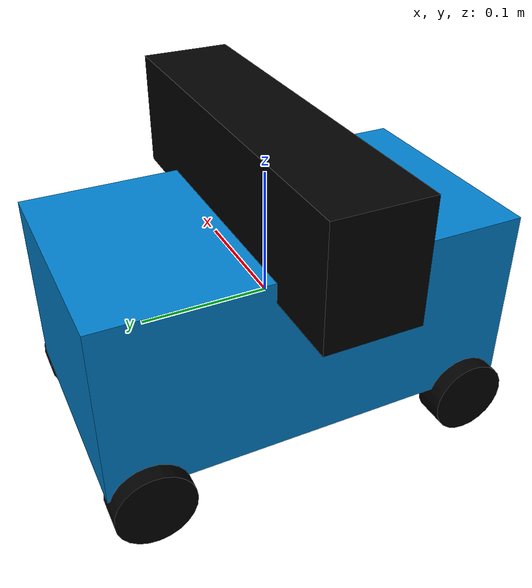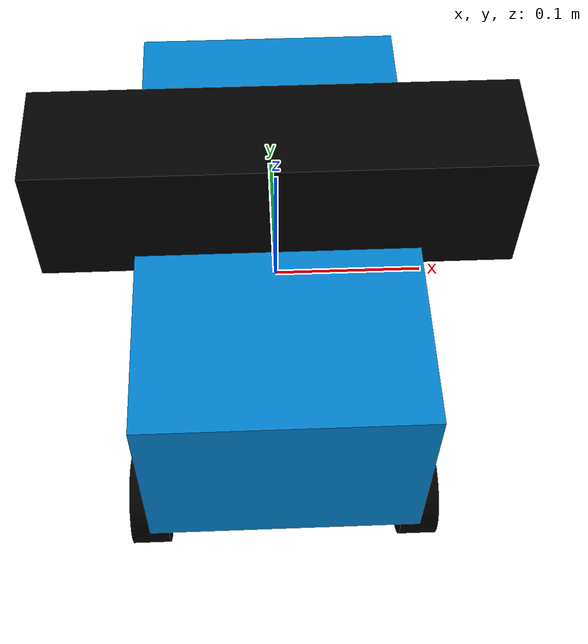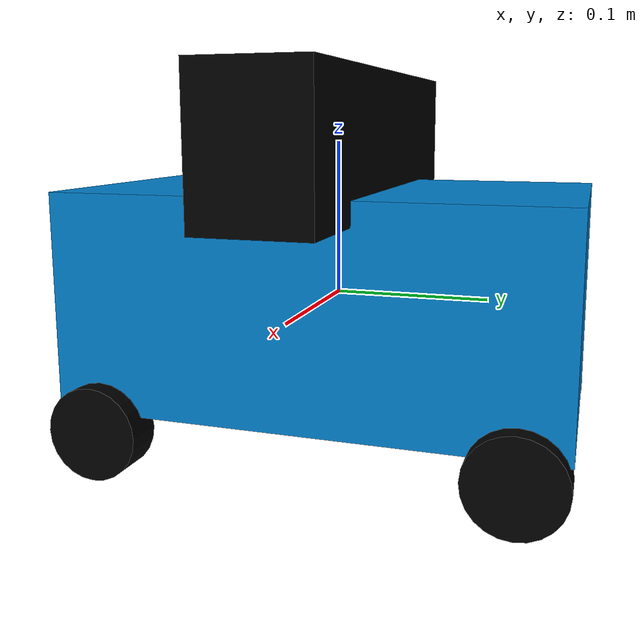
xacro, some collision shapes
<?xml version="1.0"?>
<robot name="racecar" xmlns:xacro="http://ros.org/wiki/xacro">
	<!-- constant definition -->
	<!-- wheel constants -->
	<property name="M_PI" value="3.1415926" />
	<property name="wheel_radius" value=".030" />
	<property name="wheel_length" value=".025" />
	<property name="wheel_mass" value=".020" />
	<property name="wheel_ixx" value=".000006" />
	<property name="wheel_ixy" value="0." />
	<property name="wheel_ixz" value="0." />
	<property name="wheel_iyy" value=".000006" />
	<property name="wheel_iyz" value="0." />
	<property name="wheel_izz" value=".000009" />
	<!-- body constants -->
	<property name="base_link_width" value=".32" />
	<property name="base_link_depth" value=".18" />
	<property name="base_link_height" value=".14" />
	<property name="base_link_mass" value="2.298" />
	<property name="base_link_ixx" value=".023363" />
	<property name="base_link_ixy" value="0." />
	<property name="base_link_ixz" value="0." />
	<property name="base_link_iyy" value=".009958" />
	<property name="base_link_iyz" value="0." />
	<property name="base_link_izz" value=".025814" />
	<!-- camera offsets -->
	<property name="camera_offset_x" value="0" />
	<property name="camera_offset_y" value="0" />
	<property name="camera_offset_z" value=".1" />
	<!-- macro definition -->
	<!-- wheel macro -->
	<macro name="wheel" params="prefix">
		<link name="${prefix}_wheel">
			<visual>
				<geometry>
					<cylinder length="${wheel_length}" radius="${wheel_radius}" />
				</geometry>
				<material name="black">
					<color rgba="0 0 0 1" />
				</material>
			</visual>
			<collision>
				<geometry>
					<cylinder length="${wheel_length}" radius="${wheel_radius}" />
				</geometry>
			</collision>
			<inertial>
				<mass value="${wheel_mass}" />
				<inertia ixx="${wheel_ixx}" ixy="${wheel_ixy}" ixz="${wheel_ixz}" iyy="${wheel_iyy}" iyz="${wheel_iyz}" izz="${wheel_izz}" />
			</inertial>
		</link>
	</macro>
	<!-- wheel joint macro -->
	<macro name="wheel_joint" params="prefix sign_x sign_y sign_z">
		<joint name="${prefix}_wheel_joint" type="continuous">
			<parent link="base_link" />
			<child link="${prefix}_wheel" />
			<origin rpy="0 ${M_PI/2} 0" xyz="${sign_x*0.09} ${sign_y*0.13} ${sign_z*0.08}" />
			<axis xyz="0 0 1" />
			<limit effort="10" velocity="1.0" />
			<joint_properties damping="0.0" friction="0.0" />
		</joint>
	</macro>
	<!-- camera macro -->
	<macro name="kinect_camera" params="prefix:=camera">
		<link name="${prefix}_link">
			<origin xyz="0 0 0" rpy="0 0 0" />
			<visual>
				<origin xyz="0 0 0" rpy="0 0 ${M_PI/2}" />
				<geometry>
					<mesh filename="package://racecar_description/meshes/kinect.dae" />
				</geometry>
				<material name="black">
					<color rgba="0 0 0 1" />
				</material>
			</visual>
			<collision>
				<geometry>
					<box size="0.07 0.3 0.09" />
				</geometry>
			</collision>
		</link>
		<joint name="${prefix}_optical_joint" type="fixed">
			<origin xyz="0 0 0" rpy="-1.5708 0 -1.5708" />
			<parent link="${prefix}_link" />
			<child link="${prefix}_frame_optical" />
		</joint>
		<link name="${prefix}_frame_optical" />
	</macro>
	<!-- main -->
	<!-- racecar body -->
	<link name="base_link">
		<visual>
			<geometry>
				<box size="${base_link_width} ${base_link_depth} ${base_link_height}" />
			</geometry>
			<origin rpy="0 0 ${M_PI/2}" xyz="0 0 0" />
			<material name="orange">
				<color rgba="0 0.5 0.8 1" />
			</material>
		</visual>
		<collision>
			<geometry>
				<box size="${base_link_width} ${base_link_depth} ${base_link_height}" />
			</geometry>
			<origin rpy="0 0 ${M_PI/2}" xyz="0 0 0" />
		</collision>
		<inertial>
			<origin rpy="0 0 ${M_PI/2}" xyz="0 0 0" />
			<mass value="${base_link_mass}" />
			<inertia ixx="${base_link_ixx}" ixy="${base_link_ixy}" ixz="${base_link_ixz}" iyy="${base_link_iyy}" iyz="${base_link_iyz}" izz="${base_link_izz}" />
		</inertial>
	</link>
	<!-- four wheels and joints -->
	<wheel prefix="right_front" />
	<wheel_joint prefix="right_front" sign_x="1" sign_y="1" sign_z="-1" />
	<wheel prefix="right_back" />
	<wheel_joint prefix="right_back" sign_x="1" sign_y="-1" sign_z="-1" />
	<wheel prefix="left_front" />
	<wheel_joint prefix="left_front" sign_x="-1" sign_y="1" sign_z="-1" />
	<wheel prefix="left_back" />
	<wheel_joint prefix="left_back" sign_x="-1" sign_y="-1" sign_z="-1" />
	<!-- camera -->
	<kinect_camera prefix="camera" />
	<joint name="camera_link_joint" type="fixed">
		<origin xyz="${camera_offset_x} ${camera_offset_y} ${camera_offset_z}" rpy="0 0 ${M_PI/2}" />
		<parent link="base_link" />
		<child link="camera_link" />
	</joint>
</robot>
